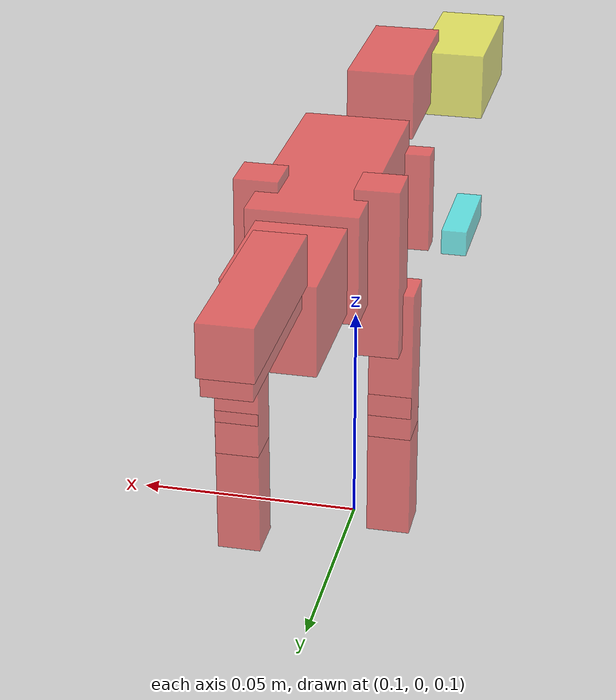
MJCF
<mujoco model="model">
  <asset>
  </asset>
  <worldbody>
    <body name="allosaurus" pos="0.11 0.0 0.1" quat="1 0 0 0">
      <freejoint name="allosaurus_freejoint"/>
      <site name="allosaurus_center" pos="0 -0.025 0.06" group="0" size="0.005" rgba="1 0 0 0.5"/>
      <geom name="body_center" type="box" pos="0 -0.02 0.065" size="0.0125 0.03 0.0125" rgba="1 0 0 0.5"/>
      <geom name="neck" type="box" pos="-0.005 -0.07 0.08" euler="-0.2 0 -0.3" size="0.008 0.0175 0.008" rgba="1 0 0 0.5"/>
      <geom name="head" type="box" pos="-0.018 -0.095 0.077" euler="0.5 0 -0.5" size="0.008 0.0175 0.008" rgba="1 1 0 0.5"/>
      <body name="tail" pos="0 -0.02 0.065">
        <geom name="tail_1" type="box" pos="0 0.04 0" size="0.01 0.02 0.01" rgba="1 0 0 0.5"/>
        <geom name="tail_2" type="box" pos="-0.002 0.08 0.01" euler="0.5 0 0.2" size="0.005 0.02 0.005" rgba="1 0 0 0.5"/>
        <geom name="tail_3" type="box" pos="-0.01 0.11 0.03" euler="0.8 0 0.3" size="0.005 0.02 0.005" rgba="1 0 0 0.5"/>
      </body>

      <body name="left_leg">
        <geom name="left_thigh" type="box" pos="0.0125 -0.005 0.06" euler="-0.5 -0.3 0" size="0.005 0.005 0.02" rgba="1 0 0 0.5"/>
        <geom name="left_calf" type="box" pos="0.015 0.005 0.035" euler="1.2 0.2 0" size="0.005 0.005 0.018" rgba="1 0 0 0.5"/>
        <geom name="left_foot" type="box" pos="0.015 0.005 0.01" euler="-0.8 0.0 0" size="0.005 0.005 0.018" rgba="1 0 0 0.5"/>
      </body>

      <body name="right_leg" pos="-0.027 0 0">
        <geom name="right_thigh" type="box" pos="0.0125 -0.005 0.06" euler="-1.1 0.3 0" size="0.005 0.005 0.02" rgba="1 0 0 0.5"/>
        <geom name="right_calf" type="box" pos="0.01 -0.01 0.035" euler="0.8 0 0" size="0.005 0.005 0.018" rgba="1 0 0 0.5"/>
        <geom name="right_foot" type="box" pos="0.01 -0.01 0.01" euler="-0.8 0 0" size="0.005 0.005 0.018" rgba="1 0 0 0.5"/>
      </body>

      <body name="right_arm" pos="0.0 -0.05 0.06">
        <geom name="right_arm_1" type="box" pos="-0.016 0.005 0" euler="0.5 0.4 0" size="0.003 0.003 0.012" rgba="1 0 0 0.5"/>
        <geom name="right_arm_2" type="box" pos="-0.025 -0.005 -0.01" euler="0.2 0 -0.2" size="0.003 0.012 0.003" rgba="0 1 1 0.5"/>
      </body>

      <body name="left_arm" pos="0.03 -0.05 0.05">
        <geom name="left_arm_1" type="box" pos="-0.018 0.005 0" euler="0.5 0 0" size="0.003 0.003 0.012" rgba="1 0 0 0.5"/>
        <geom name="left_arm_2" type="box" pos="-0.022 -0.005 -0.01" euler="0.2 0 -0.5" size="0.003 0.012 0.003" rgba="1 0 0 0.5"/>
      </body>

    </body>
  </worldbody>
</mujoco>
